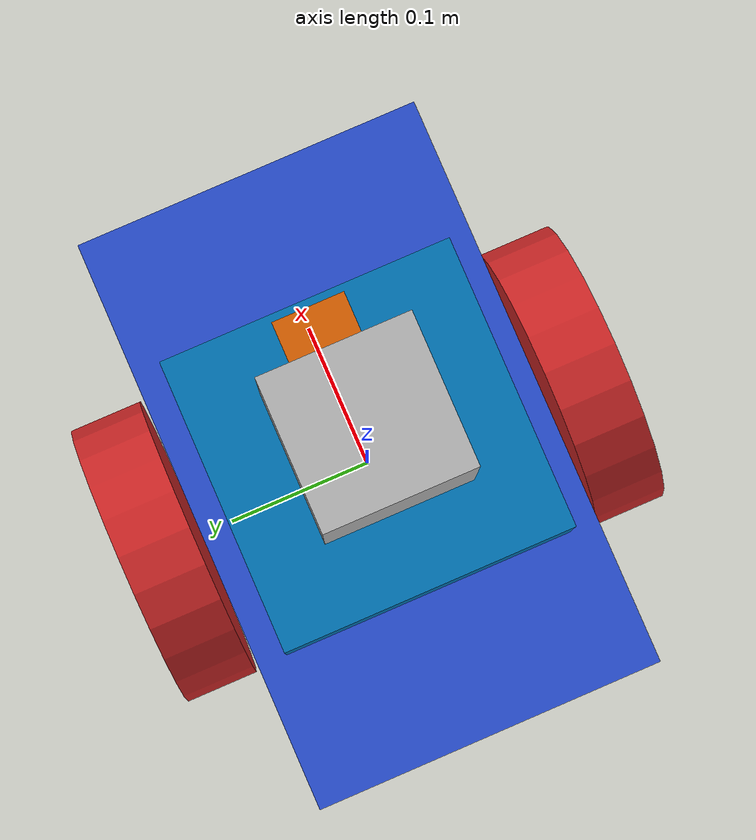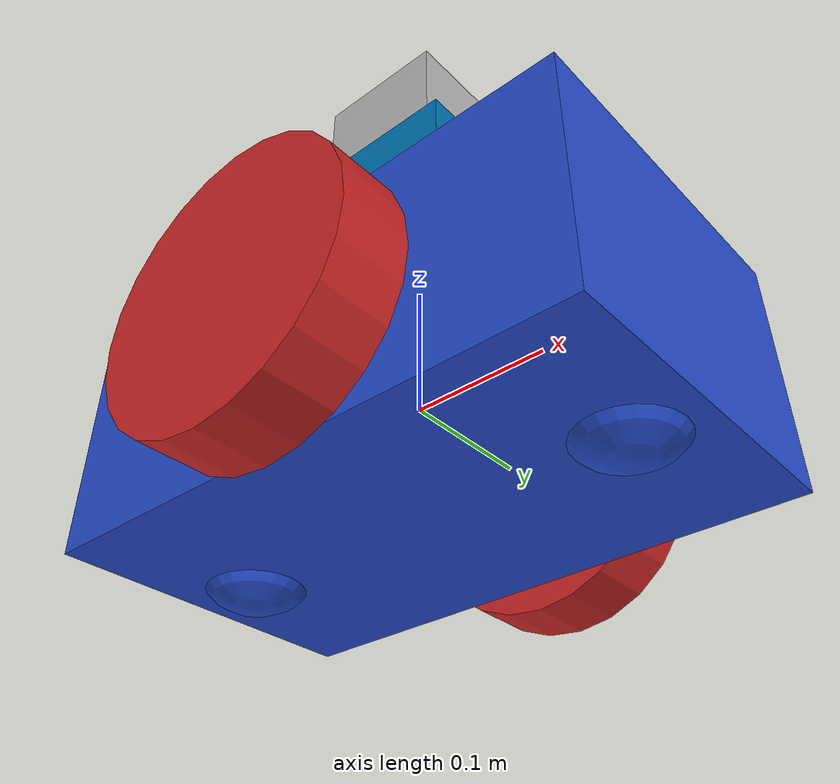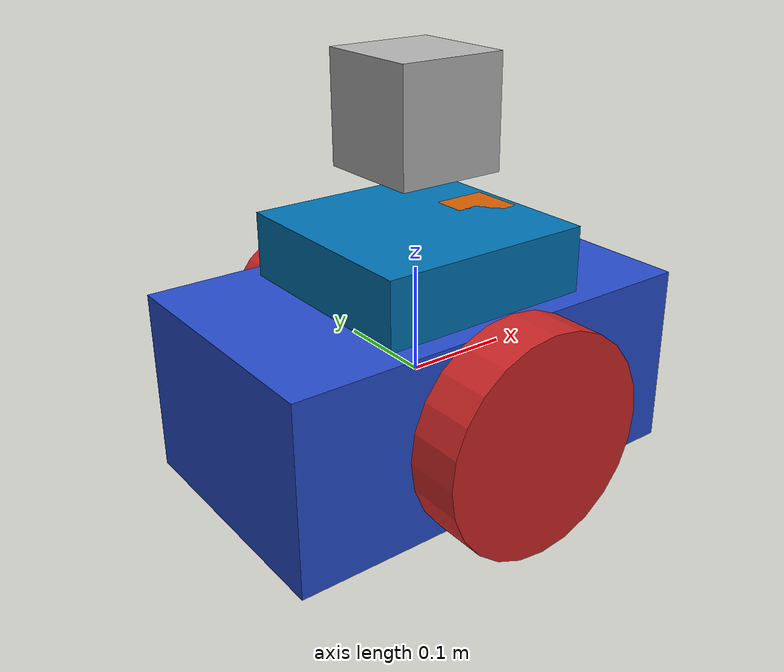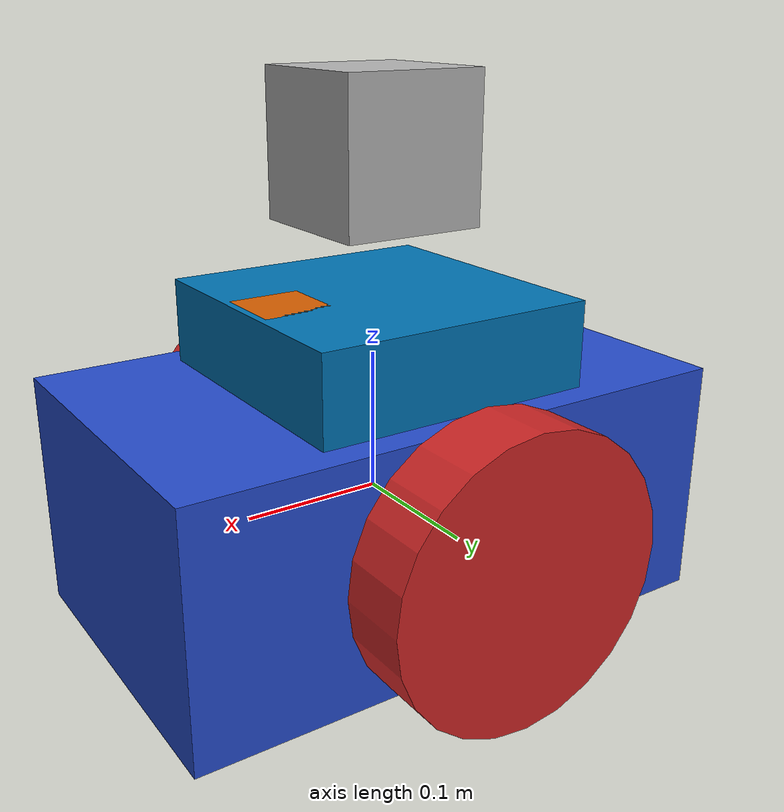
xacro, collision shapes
<?xml version='1.0'?>

<robot name="my_robot" xmlns:xacro="http://www.ros.org/wiki/xacro">
<xacro:include filename="$(find my_robot)/urdf/my_robot.gazebo" />

  <link name="robot_footprint"></link>

  <joint name="robot_footprint_joint" type="fixed">
    <origin xyz="0 0 0" rpy="0 0 0" />
    <parent link="robot_footprint"/>
    <child link="chassis" />
  </joint>

  <link name="chassis">
    <pose>0 0 0.1 0 0 0</pose>

    <inertial>
      <mass value="15.0"/>
      <origin xyz="0.0 0 0" rpy=" 0 0 0"/>
      <inertia
          ixx="0.1" ixy="0" ixz="0"
          iyy="0.1" iyz="0"
          izz="0.1"
      />
    </inertial>

    <collision name='collision'>
      <origin xyz="0 0 0" rpy=" 0 0 0"/>
      <geometry>
        <box size=".4 .24 .17"/>
      </geometry>
    </collision>

    <visual name='chassis_visual'>
      <origin xyz="0 0 0" rpy=" 0 0 0"/>
      <geometry>
        <box size=".4 .24 .17"/>
      </geometry>
    </visual>

    <collision name='back_caster_collision'>
      <origin xyz="-0.15 0 -0.05" rpy=" 0 0 0"/>
      <geometry>
        <sphere radius="0.0499"/>
      </geometry>
    </collision>

    <visual name='back_caster_visual'>
      <origin xyz="-0.15 0 -0.05" rpy=" 0 0 0"/>
      <geometry>
        <sphere radius="0.05"/>
      </geometry>
    </visual>

    <collision name='front_caster_collision'>
      <origin xyz="0.15 0 -0.05" rpy=" 0 0 0"/>
      <geometry>
        <sphere radius="0.0499"/>
      </geometry>
    </collision>

    <visual name='front_caster_visual'>
      <origin xyz="0.15 0 -0.05" rpy=" 0 0 0"/>
      <geometry>
        <sphere radius="0.05"/>
      </geometry>
    </visual>
  </link>

  <link name='right_wheel'>
    <inertial>
      <mass value="5"/>
      <inertia
	ixx="0.1" ixy="0" ixz="0"
	iyy="0.1" iyz="0"
	izz="0.1"
      />
    </inertial>

    <collision name='right_wheel_collision'>
      <origin xyz="0  0  0" rpy="0 1.5707 1.5707"/>
      <geometry>
        <cylinder radius="0.1" length="0.05"/>
      </geometry>
    </collision>

    <visual name='right_wheel_visual'>
      <origin xyz="0  0  0" rpy="0 1.5707 1.5707"/>
      <geometry>
        <cylinder radius="0.1" length="0.05"/>
      </geometry>
      <material name="red"/>
    </visual>
  </link>

  <joint type="continuous" name="right_wheel_hinge">
    <origin xyz="0 -0.15 0" rpy="0 0 0"/>
    <child link="right_wheel"/>
    <parent link="chassis"/>
    <axis xyz="0 1 0" rpy="0 0 0"/>
    <limit effort="10000" velocity="1000"/>
    <dynamics damping="1.0" friction="1.0"/>
  </joint>

<!-- Left Wheel -->
  <link name='left_wheel'>
    <inertial>
      <mass value="5"/>
      <inertia
        ixx="0.1" ixy="0" ixz="0"
        iyy="0.1" iyz="0"
        izz="0.1"
      />
    </inertial>

    <collision name='left_wheel_collision'>
      <origin xyz="0  0  0" rpy="0 1.5707 1.5707"/>
      <geometry>
        <cylinder radius="0.1" length="0.05"/>
      </geometry>
    </collision>

    <visual name='left_wheel_visual'>
      <origin xyz="0  0  0" rpy="0 1.5707 1.5707"/>
      <geometry>
        <cylinder radius="0.1" length="0.05"/>
      </geometry>
      <material name="red"/>
    </visual>
  </link>

<!-- Left Wheel Joint -->
  <joint type="continuous" name="left_wheel_hinge">
    <origin xyz="0 0.15 0" rpy="0 0 0"/>
    <child link="left_wheel"/>
    <parent link="chassis"/>
    <axis xyz="0 1 0" rpy="0 0 0"/>
    <limit effort="10000" velocity="1000"/>
    <dynamics damping="1.0" friction="1.0"/>
  </joint>

<!-- Head -->
  <link name="head">
    <visual name="head_visual">
      <origin xyz="0 0 0" rpy="0 0 1.5707"/>
      <geometry>
        <mesh filename="package://my_robot/meshes/head.dae"/>
      </geometry>
    </visual>

    <collision name="head_collision">
      <origin xyz="0 0 0" rpy="0 0 0"/>
      <geometry>
        <box size="0.2 0.2 0.15"/>
      </geometry>
    </collision>

    <inertial>
      <mass value="1e-5"/>
      <inertia
       ixx="0.1" ixy="0" ixz="0"
       iyy="0.1" iyz="0"
       izz="0.1"
      />
    </inertial>
  </link>

<!-- Head Joint -->
  <joint name="head_joint" type="fixed">
    <origin xyz="0 0 0.07" rpy="0 0 0"/>
    <parent link="chassis"/>
    <child link="head" />
    <axis xyz="0 1 0" rpy="0 0 0" />
  </joint>

<!-- Camera -->
  <link name='camera'>
    <visual name='camera_visual'>
      <origin xyz="0 0 0" rpy="0 0 0"/>
      <geometry>
        <box size="0.05 0.05 0.05"/>
      </geometry>
    </visual>

    <collision name='camera_colision'>
      <origin xyz="0 0 0" rpy="0 0 0"/>
      <geometry>
        <box size="0.05 0.05 0.05"/>
      </geometry>
    </collision>

    <inertial>
      <mass value="0.1"/>
      <box_inertia
        m="0.1" x="0.05" y="0.05" z="0.05"
      />
      <inertia
       ixx="1e-6" ixy="0" ixz="0"
       iyy="1e-6" iyz="0"
       izz="1e-6"
      />
    </inertial>
  </link>

<!-- Camera Joint -->
  <joint type="fixed" name="camera_joint">
    <origin xyz="0.07 0 0.05" rpy="0 0 0"/>
    <child link="camera"/>
    <parent link="head"/>
    <axis xyz="0 1 0" rpy="0 0 0"/>
  </joint>

<!-- Camera Optical Joint -->
  <joint name="camera_optical_joint" type="fixed">
    <origin xyz="0 0 0" rpy="-1.5707 0 -1.5707"/>
    <parent link="camera"/>
    <child link="camera_optical"/>
  </joint>

<!-- Camera Optical Link -->
 <link name="camera_optical">
  </link>

<!-- Lidar Sensor -->
  <link name="hokuyo">
    <visual name="hokuyo_visual">
      <origin xyz="0 0 0" rpy="0 0 0"/>
      <geometry>
        <mesh filename="package://my_robot/meshes/hokuyo.dae"/>
      </geometry>
    </visual>

    <collision name="hokuyo_collision">
      <origin xyz="0 0 0" rpy="0 0 0"/>
      <geometry>
        <box size="0.1 0.1 0.1"/>
      </geometry>
    </collision>

    <inertial>
      <mass value="1e-5"/>
      <inertia
       ixx="1e-6" ixy="0" ixz="0"
       iyy="1e-6" iyz="0"
       izz="1e-6"
      />
    </inertial>
  </link>

<!-- Lidar Sensor Joint -->
  <joint name="hokuyo_joint" type="fixed">
    <origin xyz="0 0 0.17" rpy="0 0 0"/>
    <parent link="head"/>
    <child link="hokuyo" />
    <axis xyz="0 1 0" rpy="0 0 0" />
  </joint>

</robot>
